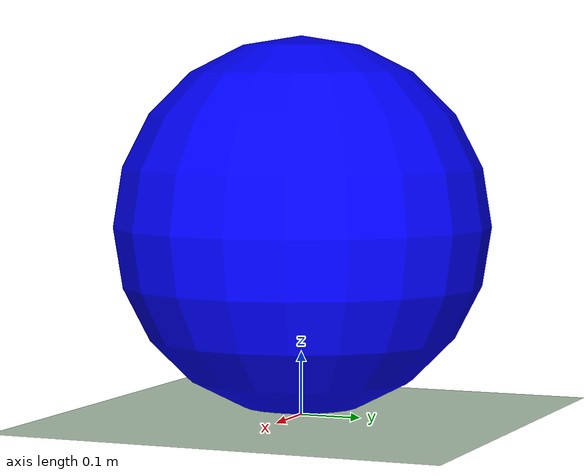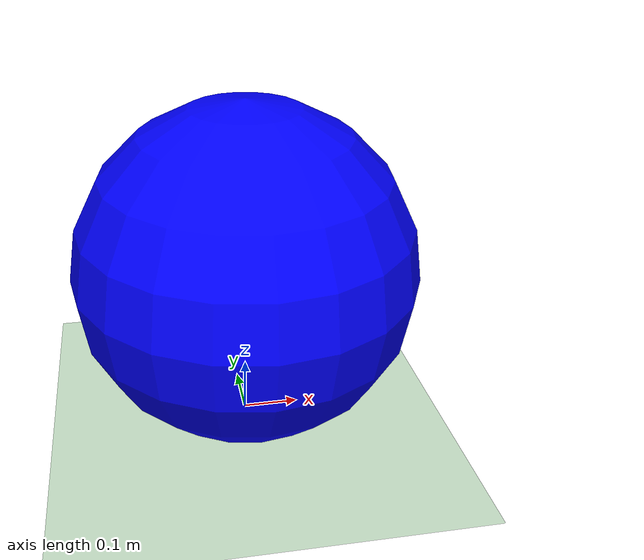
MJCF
<mujoco model="box">
  <compiler angle="radian" coordinate="local" inertiafromgeom="true" settotalmass="1"/>
  <default>
    <joint armature=".1" damping=".01" limited="false" solimplimit="0 .8 .03" solreflimit=".02 1" stiffness="1"/>
    <geom conaffinity="0" condim="3" contype="1" friction=".0 .0 .0" rgba="0.8 0.6 .4 1" solimp="0.0 0.8 0.01" solref="0.02 1"/>
    <motor ctrllimited="true" ctrlrange="-1 1"/>
  </default>
  <size nstack="300000" nuser_geom="1"/>
  <option gravity="0 0 -9.81" timestep="0.1"/>
  <asset>
    <texture builtin="gradient" height="100" rgb1="1 1 1" rgb2="0 0 0" type="skybox" width="100"/>
    <texture builtin="flat" height="1278" mark="cross" markrgb="1 1 1" name="texgeom" random="0.01" rgb1="0.8 0.6 0.4" rgb2="0.8 0.6 0.4" type="cube" width="127"/>
    <texture builtin="checker" height="100" name="texplane" rgb1="0 0 0" rgb2="0.8 0.8 0.8" type="2d" width="100"/>
    <material name="MatPlane" reflectance="0.5" shininess="1" specular="1" texrepeat="40 40" texture="texplane"/>
    <material name="geom" texture="texgeom" texuniform="true"/>
  </asset>
  <worldbody>
    <light cutoff="100" diffuse="1 1 1" dir="-0 0 -1.3" directional="true" exponent="1" pos="0 0 1.3" specular=".1 .1 .1"/>
    <geom conaffinity="1" condim="3" material="MatPlane" name="floor" pos="0 0 0" rgba="0.8 0.9 0.8 1" size="40 40 40" type="plane"/>
    <body name="box" pos="0 0 0.3">
      <camera name="track" mode="trackcom" pos="0 -5.5 2" xyaxes="1 0 0 0 0.3 1"/>
      <geom type="sphere" size="0.3 0.3 0.3" rgba="0 0 1 1"/>
      <joint axis="1 0 0" damping="1" name="boxslideX" pos="0 0 0" range="-30 30" stiffness="1"  type="slide" />
      <!-- Dummy body for visualizing desired orientation -->
    </body>
  </worldbody>
  <actuator>
    <motor gear="1000" joint="boxslideX" name="box_move_x"/>
  </actuator>
</mujoco>
